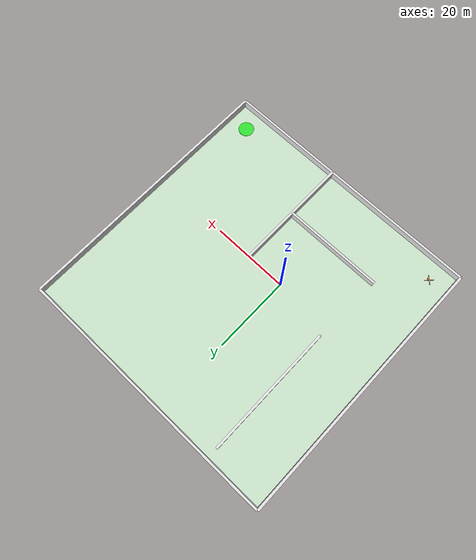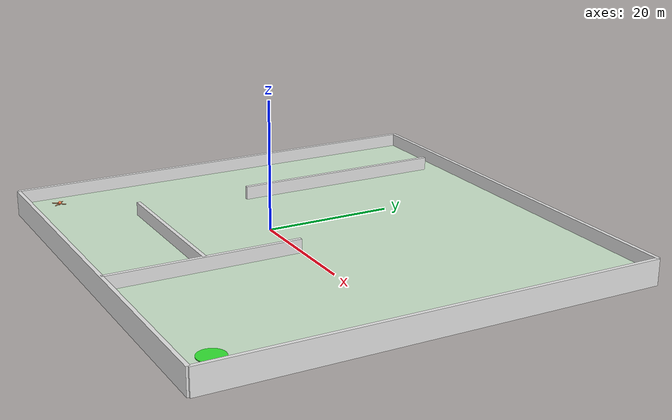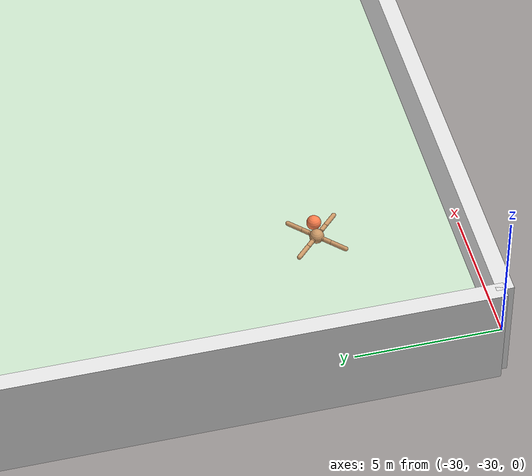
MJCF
<!-- Modified from
https://github.com/openai/mlsh/blob/master/gym/gym/envs/mujoco/assets/ant_obstaclesbig.xml
from the "Meta-Learning Shared Hierarchies" paper: https://arxiv.org/abs/1710.09767
  -->
<mujoco model="ant">
  <!--
    settotalmass includes mass of the ant and monster from the original paper. We're not sure what
    the mass of the ant alone should be, so we keep the monster in but make it invisible.
  -->
  <compiler angle="degree" coordinate="local" inertiafromgeom="true" settotalmass="25755" />
  <option integrator="RK4" timestep="0.01" />
  <custom>
    <numeric data="0.0 0.0 0.55 1.0 0.0 0.0 0.0 0.0 1.0 0.0 -1.0 0.0 -1.0 0.0 1.0" name="init_qpos" />
  </custom>
  <default>
    <joint armature="1" damping="1" limited="true" />
    <geom conaffinity="0" condim="3" density="5.0" friction="1 0.5 0.5" margin="0.01" rgba="0.8 0.6 0.4 1" material="geom" />
  </default>
  <asset>
    <texture type="skybox" builtin="gradient" rgb1=".1 .12 .15" rgb2="0 0 0" width="100" height="100" />
    <texture builtin="checker" height="100" name="texplane" rgb1=".1 .1 .1" rgb2=".15 .15 0.15" type="2d" width="100" />
    <material name="MatPlane" reflectance="0.5" shininess="1" specular="1" texrepeat="50 50" texture="texplane" />
    <texture builtin="flat" height="1278" mark="cross" markrgb="1 1 1" name="texgeom" random="0.01" rgb1="0.8 0.6 0.4" rgb2="0.8 0.6 0.4" type="cube" width="127" />
    <material name="geom" texture="texgeom" texuniform="true" />
  </asset>
  <worldbody>
    <light cutoff="100" diffuse="1 1 1" dir="-0 0 -1.3" directional="true" exponent="1" pos="0 0 1.3" specular=".1 .1 .1" />
    <!--
      Floor is 35 in each direction but shifted to (5,5), so bounds are [-30,40] by [-30,40].
    -->
    <geom conaffinity="1" condim="3" material="MatPlane" name="floor" pos="5 5 0" rgba="0.8 0.9 0.8 1" size="35 35 40" type="plane" />
    <body name="torso" pos="-25 -25 0.6">
      <geom name="torso_geom" pos="0 0 0" size="0.25 0.25 0.25" type="ellipsoid" />
      <geom name="head" density="0.01" rgba="1.0 0.5 0.3 1" pos="0.4 0 0.25" size="0.25" type="sphere" />
      <joint armature="0" damping="0" limited="false" margin="0.01" name="root" pos="0 0 0" type="free" />
      <body name="front_left_leg" pos="0 0 0">
        <geom fromto="0.0 0.0 0.0 0.2 0.2 0.0" name="aux_1_geom" size="0.08" type="capsule" />
        <body name="aux_1" pos="0.2 0.2 0">
          <joint axis="0 0 1" name="hip_1" pos="0.0 0.0 0.0" range="-30 30" type="hinge" />
          <geom fromto="0.0 0.0 0.0 0.2 0.2 0.0" name="left_leg_geom" size="0.08" type="capsule" />
          <body pos="0.2 0.2 0">
            <joint axis="-1 1 0" name="ankle_1" pos="0.0 0.0 0.0" range="30 70" type="hinge" />
            <geom fromto="0.0 0.0 0.0 0.4 0.4 0.0" name="left_ankle_geom" size="0.08" type="capsule" />
          </body>
        </body>
      </body>
      <body name="front_right_leg" pos="0 0 0">
        <geom fromto="0.0 0.0 0.0 -0.2 0.2 0.0" name="aux_2_geom" size="0.08" type="capsule" />
        <body name="aux_2" pos="-0.2 0.2 0">
          <joint axis="0 0 1" name="hip_2" pos="0.0 0.0 0.0" range="-30 30" type="hinge" />
          <geom fromto="0.0 0.0 0.0 -0.2 0.2 0.0" name="right_leg_geom" size="0.08" type="capsule" />
          <body pos="-0.2 0.2 0">
            <joint axis="1 1 0" name="ankle_2" pos="0.0 0.0 0.0" range="-70 -30" type="hinge" />
            <geom fromto="0.0 0.0 0.0 -0.4 0.4 0.0" name="right_ankle_geom" size="0.08" type="capsule" />
          </body>
        </body>
      </body>
      <body name="back_leg" pos="0 0 0">
        <geom fromto="0.0 0.0 0.0 -0.2 -0.2 0.0" name="aux_3_geom" size="0.08" type="capsule" />
        <body name="aux_3" pos="-0.2 -0.2 0">
          <joint axis="0 0 1" name="hip_3" pos="0.0 0.0 0.0" range="-30 30" type="hinge" />
          <geom fromto="0.0 0.0 0.0 -0.2 -0.2 0.0" name="back_leg_geom" size="0.08" type="capsule" />
          <body pos="-0.2 -0.2 0">
            <joint axis="-1 1 0" name="ankle_3" pos="0.0 0.0 0.0" range="-70 -30" type="hinge" />
            <geom fromto="0.0 0.0 0.0 -0.4 -0.4 0.0" name="third_ankle_geom" size="0.08" type="capsule" />
          </body>
        </body>
      </body>
      <body name="right_back_leg" pos="0 0 0">
        <geom fromto="0.0 0.0 0.0 0.2 -0.2 0.0" name="aux_4_geom" size="0.08" type="capsule" />
        <body name="aux_4" pos="0.2 -0.2 0">
          <joint axis="0 0 1" name="hip_4" pos="0.0 0.0 0.0" range="-30 30" type="hinge" />
          <geom fromto="0.0 0.0 0.0 0.2 -0.2 0.0" name="rightback_leg_geom" size="0.08" type="capsule" />
          <body pos="0.2 -0.2 0">
            <joint axis="1 1 0" name="ankle_4" pos="0.0 0.0 0.0" range="30 70" type="hinge" />
            <geom fromto="0.0 0.0 0.0 0.4 -0.4 0.0" name="fourth_ankle_geom" size="0.08" type="capsule" />
          </body>
        </body>
      </body>
    </body>

    <!-- the big border -->
    <geom pos="5 40 0" conaffinity="1" rgba="0.9 0.9 0.9 1" size="35 0.3 2" type="box" />
    <geom pos="5 -30 0" conaffinity="1" rgba="0.9 0.9 0.9 1" size="35 0.3 2" type="box" />
    <geom pos="40 5 0" conaffinity="1" rgba="0.9 0.9 0.9 1" size="0.3 35 2" type="box" />
    <geom pos="-30 5 0" conaffinity="1" rgba="0.9 0.9 0.9 1" size="0.3 35 2" type="box" />

    <!-- top-left wall -->
    <geom pos="-15 20 0" conaffinity="1" rgba="0.9 0.9 0.9 1" size="0.3 17 2" type="box" />
    <!-- bottom horizontal wall -->
    <geom pos="-3 -15 0" conaffinity="1" rgba="0.9 0.9 0.9 1" size="13 0.3 2" type="box" />
    <!-- center vertical wall -->
    <geom pos="10 -15 0" conaffinity="1" rgba="0.9 0.9 0.9 1" size="0.3 15 2" type="box" />
    <!-- green goal -->
    <site pos="35 -25 -0.099" rgba="0.2 0.9 0.2 1" size="2 0.1" type="cylinder" />

    <!--
      This monster is unnecessary for the maze, but we need it in order to keep the
      total mass correct (see comment on settotalmass above).
    -->
    <body name="monster" pos="0 0 100">
      <geom pos="0 0 0" name="monster" conaffinity="1" rgba="0 0 0 0" size="3 3 3" type="ellipsoid" />
    </body>
  </worldbody>
  <actuator>
    <motor ctrllimited="true" ctrlrange="-1.0 1.0" joint="hip_4" gear="150" />
    <motor ctrllimited="true" ctrlrange="-1.0 1.0" joint="ankle_4" gear="150" />
    <motor ctrllimited="true" ctrlrange="-1.0 1.0" joint="hip_1" gear="150" />
    <motor ctrllimited="true" ctrlrange="-1.0 1.0" joint="ankle_1" gear="150" />
    <motor ctrllimited="true" ctrlrange="-1.0 1.0" joint="hip_2" gear="150" />
    <motor ctrllimited="true" ctrlrange="-1.0 1.0" joint="ankle_2" gear="150" />
    <motor ctrllimited="true" ctrlrange="-1.0 1.0" joint="hip_3" gear="150" />
    <motor ctrllimited="true" ctrlrange="-1.0 1.0" joint="ankle_3" gear="150" />
  </actuator>
  <sensor>
    <jointpos name="pos_hip_1" joint="hip_1" />
    <jointpos name="pos_hip_2" joint="hip_2" />
    <jointpos name="pos_hip_3" joint="hip_3" />
    <jointpos name="pos_hip_4" joint="hip_4" />
    <jointpos name="pos_ankle_1" joint="ankle_1" />
    <jointpos name="pos_ankle_2" joint="ankle_2" />
    <jointpos name="pos_ankle_3" joint="ankle_3" />
    <jointpos name="pos_ankle_4" joint="ankle_4" />
    <jointvel name="vel_hip_1" joint="hip_1" />
    <jointvel name="vel_hip_2" joint="hip_2" />
    <jointvel name="vel_hip_3" joint="hip_3" />
    <jointvel name="vel_hip_4" joint="hip_4" />
    <jointvel name="vel_ankle_1" joint="ankle_1" />
    <jointvel name="vel_ankle_2" joint="ankle_2" />
    <jointvel name="vel_ankle_3" joint="ankle_3" />
    <jointvel name="vel_ankle_4" joint="ankle_4" />
  </sensor>
</mujoco>
